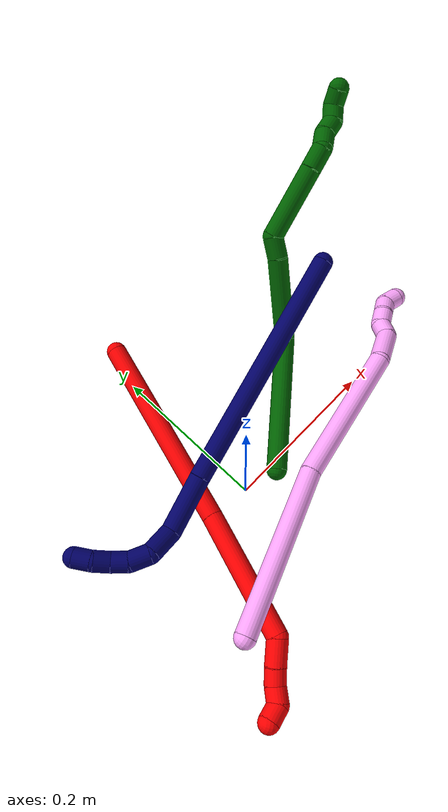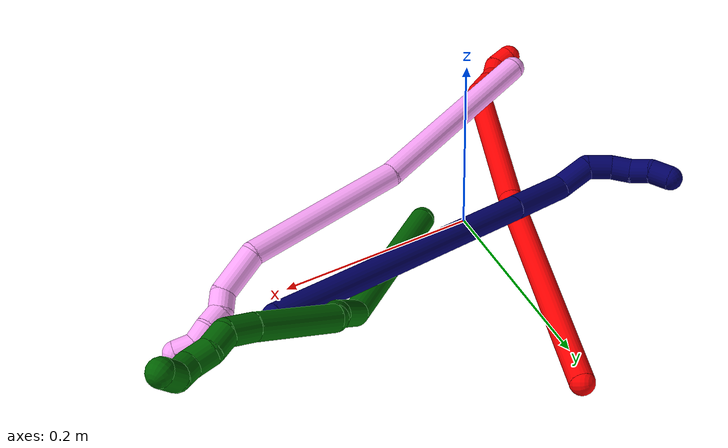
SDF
<sdf version="1.7">
 <world name="default">
  <model name="photoneo_s_sensor">
   <static>1</static>
   <pose>0 0 2 1.57079 1.57079 3.14159</pose>
   <link name="link">
    <inertial><mass>0.1</mass></inertial>
    <sensor name="sensor" type="depth">
     <update_rate>30</update_rate>
     <camera>
      <horizontal_fov>1.22</horizontal_fov>
      <image><width>1920</width><height>1200</height><format>B8G8R8</format></image>
      <clip><near>0.1</near><far>4</far></clip>
      <depth_camera><output>points</output></depth_camera>
     </camera>
     <plugin name="camera_plugin" filename="libgazebo_ros_depth_camera.so">
      <baseline>0.2</baseline>
      <alwaysOn>1</alwaysOn>
      <updateRate>0.0</updateRate>
      <cameraName>camera_ir</cameraName>
      <imageTopicName>/camera/color/image_raw</imageTopicName>
      <cameraInfoTopicName>/camera/color/camera_info</cameraInfoTopicName>
      <depthImageTopicName>/camera/depth/image_raw</depthImageTopicName>
      <depthImageCameraInfoTopicName>/camera/depth/camera_info</depthImageCameraInfoTopicName>
      <pointCloudTopicName>/camera/depth/points</pointCloudTopicName>
      <frameName>fr_optical</frameName>
      <pointCloudCutoff>0.1</pointCloudCutoff>
      <pointCloudCutoffMax>2.0</pointCloudCutoffMax>
      <distortionK1>0</distortionK1>
      <distortionK2>0</distortionK2>
      <distortionK3>0</distortionK3>
      <distortionT1>0</distortionT1>
      <distortionT2>0</distortionT2>
      <CxPrime>0</CxPrime>
      <Cx>0</Cx>
      <Cy>0</Cy>
      <focalLength>0</focalLength>
      <hackBaseline>0</hackBaseline>
     </plugin>
    </sensor>
   </link>
  </model>
  <model name="bin">
   <static>1</static>
   <link name="bottom">
    <collision name="collision-bottom">
     <pose>0 0 -0.01 0 -0 0</pose>
     <geometry><box><size>0.8 0.6 0.02</size></box></geometry>
     <surface>
      <friction><ode><mu>100</mu><mu2>100</mu2></ode></friction>
      <contact><collide_bitmask>65535</collide_bitmask></contact>
     </surface>
    </collision>
   </link>
   <link name="west_wall">
    <collision name="collision-west_wall">
     <pose>-0.41 0 0.1 0 -0 0</pose>
     <geometry><box><size>0.02 0.6 0.2</size></box></geometry>
     <surface>
      <friction><ode><mu>100</mu><mu2>100</mu2></ode></friction>
      <contact><collide_bitmask>65535</collide_bitmask></contact>
     </surface>
    </collision>
   </link>
   <link name="east_wall">
    <collision name="collision-east_wall">
     <pose>0.41 0 0.1 0 -0 0</pose>
     <geometry><box><size>0.02 0.6 0.2</size></box></geometry>
     <surface>
      <friction><ode><mu>100</mu><mu2>100</mu2></ode></friction>
      <contact><collide_bitmask>65535</collide_bitmask></contact>
     </surface>
    </collision>
   </link>
   <link name="south_wall">
    <collision name="collision-south_wall">
     <pose>0 -0.31 0.1 0 -0 0</pose>
     <geometry><box><size>0.8 0.02 0.2</size></box></geometry>
     <surface>
      <friction><ode><mu>100</mu><mu2>100</mu2></ode></friction>
      <contact><collide_bitmask>65535</collide_bitmask></contact>
     </surface>
    </collision>
   </link>
   <link name="north_wall">
    <collision name="collision-north_wall">
     <pose>0 0.31 0.1 0 -0 0</pose>
     <geometry><box><size>0.8 0.02 0.2</size></box></geometry>
     <surface>
      <friction><ode><mu>100</mu><mu2>100</mu2></ode></friction>
      <contact><collide_bitmask>65535</collide_bitmask></contact>
     </surface>
    </collision>
   </link>
  </model>
  <model name="2">
   <static>0</static>
   <link name="2">
    <collision name="collision-cylinder-e_1_1_4">
     <pose>0.020908 -0.103997 0.069126 0.984159 0.165895 0.089076</pose>
     <geometry><cylinder><radius>0.0125</radius><length>0.253227</length></cylinder></geometry>
     <surface>
      <friction><ode><mu>1.16</mu><mu2>1.16</mu2><slip1>0</slip1><slip2>0</slip2></ode></friction>
      <contact><ode><kp>1e+06</kp><kd>1</kd><max_vel>0</max_vel><min_depth>0.001</min_depth></ode></contact>
     </surface>
    </collision>
    <visual name="visual-cylinder-e_1_1_4">
     <pose>0.020908 -0.103997 0.069126 0.984159 0.165895 0.089076</pose>
     <geometry><cylinder><radius>0.0125</radius><length>0.253227</length></cylinder></geometry>
     <material><ambient>1 0 0 1</ambient></material>
    </visual>
    <collision name="collision-cylinder-e_2_4_5">
     <pose>0.050174 -0.275927 0.175564 1.06855 0.10742 0.063597</pose>
     <geometry><cylinder><radius>0.0125</radius><length>0.155909</length></cylinder></geometry>
     <surface>
      <friction><ode><mu>1.16</mu><mu2>1.16</mu2><slip1>0</slip1><slip2>0</slip2></ode></friction>
      <contact><ode><kp>1e+06</kp><kd>1</kd><max_vel>0</max_vel><min_depth>0.001</min_depth></ode></contact>
     </surface>
    </collision>
    <visual name="visual-cylinder-e_2_4_5">
     <pose>0.050174 -0.275927 0.175564 1.06855 0.10742 0.063597</pose>
     <geometry><cylinder><radius>0.0125</radius><length>0.155909</length></cylinder></geometry>
     <material><ambient>1 0 0 1</ambient></material>
    </visual>
    <collision name="collision-cylinder-e_3_5_6">
     <pose>0.068457 -0.355461 0.214697 1.41496 0.70172 0.60666</pose>
     <geometry><cylinder><radius>0.0125</radius><length>0.030749</length></cylinder></geometry>
     <surface>
      <friction><ode><mu>1.16</mu><mu2>1.16</mu2><slip1>0</slip1><slip2>0</slip2></ode></friction>
      <contact><ode><kp>1e+06</kp><kd>1</kd><max_vel>0</max_vel><min_depth>0.001</min_depth></ode></contact>
     </surface>
    </collision>
    <visual name="visual-cylinder-e_3_5_6">
     <pose>0.068457 -0.355461 0.214697 1.41496 0.70172 0.60666</pose>
     <geometry><cylinder><radius>0.0125</radius><length>0.030749</length></cylinder></geometry>
     <material><ambient>1 0 0 1</ambient></material>
    </visual>
    <collision name="collision-cylinder-e_4_6_7">
     <pose>0.085024 -0.374357 0.218427 1.31513 0.722023 0.567383</pose>
     <geometry><cylinder><radius>0.0125</radius><length>0.020099</length></cylinder></geometry>
     <surface>
      <friction><ode><mu>1.16</mu><mu2>1.16</mu2><slip1>0</slip1><slip2>0</slip2></ode></friction>
      <contact><ode><kp>1e+06</kp><kd>1</kd><max_vel>0</max_vel><min_depth>0.001</min_depth></ode></contact>
     </surface>
    </collision>
    <visual name="visual-cylinder-e_4_6_7">
     <pose>0.085024 -0.374357 0.218427 1.31513 0.722023 0.567383</pose>
     <geometry><cylinder><radius>0.0125</radius><length>0.020099</length></cylinder></geometry>
     <material><ambient>1 0 0 1</ambient></material>
    </visual>
    <collision name="collision-cylinder-e_5_7_8">
     <pose>0.095383 -0.390676 0.222545 1.33046 0.380646 0.300011</pose>
     <geometry><cylinder><radius>0.0125</radius><length>0.020011</length></cylinder></geometry>
     <surface>
      <friction><ode><mu>1.16</mu><mu2>1.16</mu2><slip1>0</slip1><slip2>0</slip2></ode></friction>
      <contact><ode><kp>1e+06</kp><kd>1</kd><max_vel>0</max_vel><min_depth>0.001</min_depth></ode></contact>
     </surface>
    </collision>
    <visual name="visual-cylinder-e_5_7_8">
     <pose>0.095383 -0.390676 0.222545 1.33046 0.380646 0.300011</pose>
     <geometry><cylinder><radius>0.0125</radius><length>0.020011</length></cylinder></geometry>
     <material><ambient>1 0 0 1</ambient></material>
    </visual>
    <collision name="collision-cylinder-e_6_8_2">
     <pose>0.103019 -0.407632 0.220093 2.10217 0.402586 0.685141</pose>
     <geometry><cylinder><radius>0.0125</radius><length>0.020005</length></cylinder></geometry>
     <surface>
      <friction><ode><mu>1.16</mu><mu2>1.16</mu2><slip1>0</slip1><slip2>0</slip2></ode></friction>
      <contact><ode><kp>1e+06</kp><kd>1</kd><max_vel>0</max_vel><min_depth>0.001</min_depth></ode></contact>
     </surface>
    </collision>
    <visual name="visual-cylinder-e_6_8_2">
     <pose>0.103019 -0.407632 0.220093 2.10217 0.402586 0.685141</pose>
     <geometry><cylinder><radius>0.0125</radius><length>0.020005</length></cylinder></geometry>
     <material><ambient>1 0 0 1</ambient></material>
    </visual>
    <collision name="collision-sphere-2">
     <pose>0.106938 -0.415566 0.21543 0 -0 0</pose>
     <geometry><sphere><radius>0.0125</radius></sphere></geometry>
     <surface>
      <friction><ode><mu>1.16</mu><mu2>1.16</mu2><slip1>0</slip1><slip2>0</slip2></ode></friction>
      <contact><ode><kp>1e+06</kp><kd>1</kd><max_vel>0</max_vel><min_depth>0.001</min_depth></ode></contact>
     </surface>
    </collision>
    <visual name="visual-sphere-2">
     <pose>0.106938 -0.415566 0.21543 0 -0 0</pose>
     <geometry><sphere><radius>0.0125</radius></sphere></geometry>
     <material><ambient>1 0 0 1</ambient></material>
    </visual>
    <collision name="collision-sphere-4">
     <pose>0.041817 -0.207994 0.138253 0 -0 0</pose>
     <geometry><sphere><radius>0.0125</radius></sphere></geometry>
     <surface>
      <friction><ode><mu>1.16</mu><mu2>1.16</mu2><slip1>0</slip1><slip2>0</slip2></ode></friction>
      <contact><ode><kp>1e+06</kp><kd>1</kd><max_vel>0</max_vel><min_depth>0.001</min_depth></ode></contact>
     </surface>
    </collision>
    <visual name="visual-sphere-4">
     <pose>0.041817 -0.207994 0.138253 0 -0 0</pose>
     <geometry><sphere><radius>0.0125</radius></sphere></geometry>
     <material><ambient>1 0 0 1</ambient></material>
    </visual>
    <collision name="collision-sphere-1">
     <geometry><sphere><radius>0.0125</radius></sphere></geometry>
     <surface>
      <friction><ode><mu>1.16</mu><mu2>1.16</mu2><slip1>0</slip1><slip2>0</slip2></ode></friction>
      <contact><ode><kp>1e+06</kp><kd>1</kd><max_vel>0</max_vel><min_depth>0.001</min_depth></ode></contact>
     </surface>
    </collision>
    <visual name="visual-sphere-1">
     <geometry><sphere><radius>0.0125</radius></sphere></geometry>
     <material><ambient>1 0 0 1</ambient></material>
    </visual>
    <collision name="collision-sphere-8">
     <pose>0.0991 -0.399698 0.224756 0 -0 0</pose>
     <geometry><sphere><radius>0.0125</radius></sphere></geometry>
     <surface>
      <friction><ode><mu>1.16</mu><mu2>1.16</mu2><slip1>0</slip1><slip2>0</slip2></ode></friction>
      <contact><ode><kp>1e+06</kp><kd>1</kd><max_vel>0</max_vel><min_depth>0.001</min_depth></ode></contact>
     </surface>
    </collision>
    <visual name="visual-sphere-8">
     <pose>0.0991 -0.399698 0.224756 0 -0 0</pose>
     <geometry><sphere><radius>0.0125</radius></sphere></geometry>
     <material><ambient>1 0 0 1</ambient></material>
    </visual>
    <collision name="collision-sphere-5">
     <pose>0.058532 -0.343861 0.212874 0 -0 0</pose>
     <geometry><sphere><radius>0.0125</radius></sphere></geometry>
     <surface>
      <friction><ode><mu>1.16</mu><mu2>1.16</mu2><slip1>0</slip1><slip2>0</slip2></ode></friction>
      <contact><ode><kp>1e+06</kp><kd>1</kd><max_vel>0</max_vel><min_depth>0.001</min_depth></ode></contact>
     </surface>
    </collision>
    <visual name="visual-sphere-5">
     <pose>0.058532 -0.343861 0.212874 0 -0 0</pose>
     <geometry><sphere><radius>0.0125</radius></sphere></geometry>
     <material><ambient>1 0 0 1</ambient></material>
    </visual>
    <collision name="collision-sphere-6">
     <pose>0.078382 -0.36706 0.216519 0 -0 0</pose>
     <geometry><sphere><radius>0.0125</radius></sphere></geometry>
     <surface>
      <friction><ode><mu>1.16</mu><mu2>1.16</mu2><slip1>0</slip1><slip2>0</slip2></ode></friction>
      <contact><ode><kp>1e+06</kp><kd>1</kd><max_vel>0</max_vel><min_depth>0.001</min_depth></ode></contact>
     </surface>
    </collision>
    <visual name="visual-sphere-6">
     <pose>0.078382 -0.36706 0.216519 0 -0 0</pose>
     <geometry><sphere><radius>0.0125</radius></sphere></geometry>
     <material><ambient>1 0 0 1</ambient></material>
    </visual>
    <collision name="collision-sphere-7">
     <pose>0.091665 -0.381654 0.220334 0 -0 0</pose>
     <geometry><sphere><radius>0.0125</radius></sphere></geometry>
     <surface>
      <friction><ode><mu>1.16</mu><mu2>1.16</mu2><slip1>0</slip1><slip2>0</slip2></ode></friction>
      <contact><ode><kp>1e+06</kp><kd>1</kd><max_vel>0</max_vel><min_depth>0.001</min_depth></ode></contact>
     </surface>
    </collision>
    <visual name="visual-sphere-7">
     <pose>0.091665 -0.381654 0.220334 0 -0 0</pose>
     <geometry><sphere><radius>0.0125</radius></sphere></geometry>
     <material><ambient>1 0 0 1</ambient></material>
    </visual>
    <inertial>
     <pose>0.041801 -0.207562 0.12945 0 -0 0</pose>
     <mass>0.5</mass>
     <inertia>
      <ixx>0.001816</ixx>
      <ixy>0</ixy>
      <ixz>0</ixz>
      <iyy>0.001038</iyy>
      <iyz>0</iyz>
      <izz>0.001159</izz>
     </inertia>
    </inertial>
   </link>
   <pose>0.016565 0.24785 0.011499 -2.31904 0.949218 -3.1309</pose>
  </model>
  <model name="4">
   <static>0</static>
   <link name="4">
    <collision name="collision-cylinder-e_1_1_4">
     <pose>0.092776 -0.037333 -0.005337 1.71278 1.1847 1.31987</pose>
     <geometry><cylinder><radius>0.0125</radius><length>0.200296</length></cylinder></geometry>
     <surface>
      <friction><ode><mu>1.16</mu><mu2>1.16</mu2><slip1>0</slip1><slip2>0</slip2></ode></friction>
      <contact><ode><kp>1e+06</kp><kd>1</kd><max_vel>0</max_vel><min_depth>0.001</min_depth></ode></contact>
     </surface>
    </collision>
    <visual name="visual-cylinder-e_1_1_4">
     <pose>0.092776 -0.037333 -0.005337 1.71278 1.1847 1.31987</pose>
     <geometry><cylinder><radius>0.0125</radius><length>0.200296</length></cylinder></geometry>
     <material><ambient>1 0.65098 0.996078 1</ambient></material>
    </visual>
    <collision name="collision-cylinder-e_2_4_5">
     <pose>0.267804 -0.097144 -0.003293 1.25355 1.29072 0.99838</pose>
     <geometry><cylinder><radius>0.0125</radius><length>0.171173</length></cylinder></geometry>
     <surface>
      <friction><ode><mu>1.16</mu><mu2>1.16</mu2><slip1>0</slip1><slip2>0</slip2></ode></friction>
      <contact><ode><kp>1e+06</kp><kd>1</kd><max_vel>0</max_vel><min_depth>0.001</min_depth></ode></contact>
     </surface>
    </collision>
    <visual name="visual-cylinder-e_2_4_5">
     <pose>0.267804 -0.097144 -0.003293 1.25355 1.29072 0.99838</pose>
     <geometry><cylinder><radius>0.0125</radius><length>0.171173</length></cylinder></geometry>
     <material><ambient>1 0.65098 0.996078 1</ambient></material>
    </visual>
    <collision name="collision-cylinder-e_3_5_6">
     <pose>0.368549 -0.134696 0.00406 1.57262 0.886904 0.888315</pose>
     <geometry><cylinder><radius>0.0125</radius><length>0.047717</length></cylinder></geometry>
     <surface>
      <friction><ode><mu>1.16</mu><mu2>1.16</mu2><slip1>0</slip1><slip2>0</slip2></ode></friction>
      <contact><ode><kp>1e+06</kp><kd>1</kd><max_vel>0</max_vel><min_depth>0.001</min_depth></ode></contact>
     </surface>
    </collision>
    <visual name="visual-cylinder-e_3_5_6">
     <pose>0.368549 -0.134696 0.00406 1.57262 0.886904 0.888315</pose>
     <geometry><cylinder><radius>0.0125</radius><length>0.047717</length></cylinder></geometry>
     <material><ambient>1 0.65098 0.996078 1</ambient></material>
    </visual>
    <collision name="collision-cylinder-e_4_6_7">
     <pose>0.392763 -0.156271 -0.001499 2.27587 0.590485 1.16419</pose>
     <geometry><cylinder><radius>0.0125</radius><length>0.020551</length></cylinder></geometry>
     <surface>
      <friction><ode><mu>1.16</mu><mu2>1.16</mu2><slip1>0</slip1><slip2>0</slip2></ode></friction>
      <contact><ode><kp>1e+06</kp><kd>1</kd><max_vel>0</max_vel><min_depth>0.001</min_depth></ode></contact>
     </surface>
    </collision>
    <visual name="visual-cylinder-e_4_6_7">
     <pose>0.392763 -0.156271 -0.001499 2.27587 0.590485 1.16419</pose>
     <geometry><cylinder><radius>0.0125</radius><length>0.020551</length></cylinder></geometry>
     <material><ambient>1 0.65098 0.996078 1</ambient></material>
    </visual>
    <collision name="collision-cylinder-e_5_7_8">
     <pose>0.407282 -0.167391 -0.008573 1.89293 1.06529 1.37146</pose>
     <geometry><cylinder><radius>0.0125</radius><length>0.020112</length></cylinder></geometry>
     <surface>
      <friction><ode><mu>1.16</mu><mu2>1.16</mu2><slip1>0</slip1><slip2>0</slip2></ode></friction>
      <contact><ode><kp>1e+06</kp><kd>1</kd><max_vel>0</max_vel><min_depth>0.001</min_depth></ode></contact>
     </surface>
    </collision>
    <visual name="visual-cylinder-e_5_7_8">
     <pose>0.407282 -0.167391 -0.008573 1.89293 1.06529 1.37146</pose>
     <geometry><cylinder><radius>0.0125</radius><length>0.020112</length></cylinder></geometry>
     <material><ambient>1 0.65098 0.996078 1</ambient></material>
    </visual>
    <collision name="collision-cylinder-e_6_8_9">
     <pose>0.42382 -0.178408 -0.0108 1.67758 0.877185 0.962225</pose>
     <geometry><cylinder><radius>0.0125</radius><length>0.020129</length></cylinder></geometry>
     <surface>
      <friction><ode><mu>1.16</mu><mu2>1.16</mu2><slip1>0</slip1><slip2>0</slip2></ode></friction>
      <contact><ode><kp>1e+06</kp><kd>1</kd><max_vel>0</max_vel><min_depth>0.001</min_depth></ode></contact>
     </surface>
    </collision>
    <visual name="visual-cylinder-e_6_8_9">
     <pose>0.42382 -0.178408 -0.0108 1.67758 0.877185 0.962225</pose>
     <geometry><cylinder><radius>0.0125</radius><length>0.020129</length></cylinder></geometry>
     <material><ambient>1 0.65098 0.996078 1</ambient></material>
    </visual>
    <collision name="collision-cylinder-e_7_9_2">
     <pose>0.439832 -0.187844 -0.00674 0.569423 0.972786 0.307063</pose>
     <geometry><cylinder><radius>0.0125</radius><length>0.020021</length></cylinder></geometry>
     <surface>
      <friction><ode><mu>1.16</mu><mu2>1.16</mu2><slip1>0</slip1><slip2>0</slip2></ode></friction>
      <contact><ode><kp>1e+06</kp><kd>1</kd><max_vel>0</max_vel><min_depth>0.001</min_depth></ode></contact>
     </surface>
    </collision>
    <visual name="visual-cylinder-e_7_9_2">
     <pose>0.439832 -0.187844 -0.00674 0.569423 0.972786 0.307063</pose>
     <geometry><cylinder><radius>0.0125</radius><length>0.020021</length></cylinder></geometry>
     <material><ambient>1 0.65098 0.996078 1</ambient></material>
    </visual>
    <collision name="collision-sphere-2">
     <pose>0.448105 -0.190883 -0.001993 0 -0 0</pose>
     <geometry><sphere><radius>0.0125</radius></sphere></geometry>
     <surface>
      <friction><ode><mu>1.16</mu><mu2>1.16</mu2><slip1>0</slip1><slip2>0</slip2></ode></friction>
      <contact><ode><kp>1e+06</kp><kd>1</kd><max_vel>0</max_vel><min_depth>0.001</min_depth></ode></contact>
     </surface>
    </collision>
    <visual name="visual-sphere-2">
     <pose>0.448105 -0.190883 -0.001993 0 -0 0</pose>
     <geometry><sphere><radius>0.0125</radius></sphere></geometry>
     <material><ambient>1 0.65098 0.996078 1</ambient></material>
    </visual>
    <collision name="collision-sphere-9">
     <pose>0.431559 -0.184805 -0.011486 0 -0 0</pose>
     <geometry><sphere><radius>0.0125</radius></sphere></geometry>
     <surface>
      <friction><ode><mu>1.16</mu><mu2>1.16</mu2><slip1>0</slip1><slip2>0</slip2></ode></friction>
      <contact><ode><kp>1e+06</kp><kd>1</kd><max_vel>0</max_vel><min_depth>0.001</min_depth></ode></contact>
     </surface>
    </collision>
    <visual name="visual-sphere-9">
     <pose>0.431559 -0.184805 -0.011486 0 -0 0</pose>
     <geometry><sphere><radius>0.0125</radius></sphere></geometry>
     <material><ambient>1 0.65098 0.996078 1</ambient></material>
    </visual>
    <collision name="collision-sphere-4">
     <pose>0.185552 -0.074667 -0.010673 0 -0 0</pose>
     <geometry><sphere><radius>0.0125</radius></sphere></geometry>
     <surface>
      <friction><ode><mu>1.16</mu><mu2>1.16</mu2><slip1>0</slip1><slip2>0</slip2></ode></friction>
      <contact><ode><kp>1e+06</kp><kd>1</kd><max_vel>0</max_vel><min_depth>0.001</min_depth></ode></contact>
     </surface>
    </collision>
    <visual name="visual-sphere-4">
     <pose>0.185552 -0.074667 -0.010673 0 -0 0</pose>
     <geometry><sphere><radius>0.0125</radius></sphere></geometry>
     <material><ambient>1 0.65098 0.996078 1</ambient></material>
    </visual>
    <collision name="collision-sphere-1">
     <geometry><sphere><radius>0.0125</radius></sphere></geometry>
     <surface>
      <friction><ode><mu>1.16</mu><mu2>1.16</mu2><slip1>0</slip1><slip2>0</slip2></ode></friction>
      <contact><ode><kp>1e+06</kp><kd>1</kd><max_vel>0</max_vel><min_depth>0.001</min_depth></ode></contact>
     </surface>
    </collision>
    <visual name="visual-sphere-1">
     <geometry><sphere><radius>0.0125</radius></sphere></geometry>
     <material><ambient>1 0.65098 0.996078 1</ambient></material>
    </visual>
    <collision name="collision-sphere-8">
     <pose>0.416081 -0.17201 -0.010115 0 -0 0</pose>
     <geometry><sphere><radius>0.0125</radius></sphere></geometry>
     <surface>
      <friction><ode><mu>1.16</mu><mu2>1.16</mu2><slip1>0</slip1><slip2>0</slip2></ode></friction>
      <contact><ode><kp>1e+06</kp><kd>1</kd><max_vel>0</max_vel><min_depth>0.001</min_depth></ode></contact>
     </surface>
    </collision>
    <visual name="visual-sphere-8">
     <pose>0.416081 -0.17201 -0.010115 0 -0 0</pose>
     <geometry><sphere><radius>0.0125</radius></sphere></geometry>
     <material><ambient>1 0.65098 0.996078 1</ambient></material>
    </visual>
    <collision name="collision-sphere-5">
     <pose>0.350055 -0.119622 0.004087 0 -0 0</pose>
     <geometry><sphere><radius>0.0125</radius></sphere></geometry>
     <surface>
      <friction><ode><mu>1.16</mu><mu2>1.16</mu2><slip1>0</slip1><slip2>0</slip2></ode></friction>
      <contact><ode><kp>1e+06</kp><kd>1</kd><max_vel>0</max_vel><min_depth>0.001</min_depth></ode></contact>
     </surface>
    </collision>
    <visual name="visual-sphere-5">
     <pose>0.350055 -0.119622 0.004087 0 -0 0</pose>
     <geometry><sphere><radius>0.0125</radius></sphere></geometry>
     <material><ambient>1 0.65098 0.996078 1</ambient></material>
    </visual>
    <collision name="collision-sphere-6">
     <pose>0.387042 -0.149771 0.004032 0 -0 0</pose>
     <geometry><sphere><radius>0.0125</radius></sphere></geometry>
     <surface>
      <friction><ode><mu>1.16</mu><mu2>1.16</mu2><slip1>0</slip1><slip2>0</slip2></ode></friction>
      <contact><ode><kp>1e+06</kp><kd>1</kd><max_vel>0</max_vel><min_depth>0.001</min_depth></ode></contact>
     </surface>
    </collision>
    <visual name="visual-sphere-6">
     <pose>0.387042 -0.149771 0.004032 0 -0 0</pose>
     <geometry><sphere><radius>0.0125</radius></sphere></geometry>
     <material><ambient>1 0.65098 0.996078 1</ambient></material>
    </visual>
    <collision name="collision-sphere-7">
     <pose>0.398484 -0.162771 -0.007031 0 -0 0</pose>
     <geometry><sphere><radius>0.0125</radius></sphere></geometry>
     <surface>
      <friction><ode><mu>1.16</mu><mu2>1.16</mu2><slip1>0</slip1><slip2>0</slip2></ode></friction>
      <contact><ode><kp>1e+06</kp><kd>1</kd><max_vel>0</max_vel><min_depth>0.001</min_depth></ode></contact>
     </surface>
    </collision>
    <visual name="visual-sphere-7">
     <pose>0.398484 -0.162771 -0.007031 0 -0 0</pose>
     <geometry><sphere><radius>0.0125</radius></sphere></geometry>
     <material><ambient>1 0.65098 0.996078 1</ambient></material>
    </visual>
    <inertial>
     <pose>0.231219 -0.088927 -0.003989 0 -0 0</pose>
     <mass>0.5</mass>
     <inertia>
      <ixx>0.000522</ixx>
      <ixy>0</ixy>
      <ixz>0</ixz>
      <iyy>0.001325</iyy>
      <iyz>0</iyz>
      <izz>-0.000675</izz>
     </inertia>
    </inertial>
   </link>
   <pose>-0.127978 -0.120369 0.066941 1.89881 -0.269205 0.19682</pose>
  </model>
  <model name="6">
   <static>0</static>
   <link name="6">
    <collision name="collision-cylinder-e_1_1_4">
     <pose>0.008783 0.008429 0.083257 -0.100897 0.10457 -0.005285</pose>
     <geometry><cylinder><radius>0.0125</radius><length>0.168284</length></cylinder></geometry>
     <surface>
      <friction><ode><mu>1.16</mu><mu2>1.16</mu2><slip1>0</slip1><slip2>0</slip2></ode></friction>
      <contact><ode><kp>1e+06</kp><kd>1</kd><max_vel>0</max_vel><min_depth>0.001</min_depth></ode></contact>
     </surface>
    </collision>
    <visual name="visual-cylinder-e_1_1_4">
     <pose>0.008783 0.008429 0.083257 -0.100897 0.10457 -0.005285</pose>
     <geometry><cylinder><radius>0.0125</radius><length>0.168284</length></cylinder></geometry>
     <material><ambient>0 0.392157 0.003922 1</ambient></material>
    </visual>
    <collision name="collision-cylinder-e_2_4_5">
     <pose>0.036041 0.050023 0.2021 -0.750192 0.36298 -0.144258</pose>
     <geometry><cylinder><radius>0.0125</radius><length>0.104071</length></cylinder></geometry>
     <surface>
      <friction><ode><mu>1.16</mu><mu2>1.16</mu2><slip1>0</slip1><slip2>0</slip2></ode></friction>
      <contact><ode><kp>1e+06</kp><kd>1</kd><max_vel>0</max_vel><min_depth>0.001</min_depth></ode></contact>
     </surface>
    </collision>
    <visual name="visual-cylinder-e_2_4_5">
     <pose>0.036041 0.050023 0.2021 -0.750192 0.36298 -0.144258</pose>
     <geometry><cylinder><radius>0.0125</radius><length>0.104071</length></cylinder></geometry>
     <material><ambient>0 0.392157 0.003922 1</ambient></material>
    </visual>
    <collision name="collision-cylinder-e_3_5_6">
     <pose>0.060708 0.090137 0.247189 -0.631437 0.484174 -0.160968</pose>
     <geometry><cylinder><radius>0.0125</radius><length>0.026601</length></cylinder></geometry>
     <surface>
      <friction><ode><mu>1.16</mu><mu2>1.16</mu2><slip1>0</slip1><slip2>0</slip2></ode></friction>
      <contact><ode><kp>1e+06</kp><kd>1</kd><max_vel>0</max_vel><min_depth>0.001</min_depth></ode></contact>
     </surface>
    </collision>
    <visual name="visual-cylinder-e_3_5_6">
     <pose>0.060708 0.090137 0.247189 -0.631437 0.484174 -0.160968</pose>
     <geometry><cylinder><radius>0.0125</radius><length>0.026601</length></cylinder></geometry>
     <material><ambient>0 0.392157 0.003922 1</ambient></material>
    </visual>
    <collision name="collision-cylinder-e_4_6_7">
     <pose>0.054901 0.12019 0.293031 -0.566302 -0.271726 0.079512</pose>
     <geometry><cylinder><radius>0.0125</radius><length>0.089406</length></cylinder></geometry>
     <surface>
      <friction><ode><mu>1.16</mu><mu2>1.16</mu2><slip1>0</slip1><slip2>0</slip2></ode></friction>
      <contact><ode><kp>1e+06</kp><kd>1</kd><max_vel>0</max_vel><min_depth>0.001</min_depth></ode></contact>
     </surface>
    </collision>
    <visual name="visual-cylinder-e_4_6_7">
     <pose>0.054901 0.12019 0.293031 -0.566302 -0.271726 0.079512</pose>
     <geometry><cylinder><radius>0.0125</radius><length>0.089406</length></cylinder></geometry>
     <material><ambient>0 0.392157 0.003922 1</ambient></material>
    </visual>
    <collision name="collision-cylinder-e_5_7_8">
     <pose>0.039016 0.149743 0.341424 -0.491316 -0.277052 0.069882</pose>
     <geometry><cylinder><radius>0.0125</radius><length>0.028422</length></cylinder></geometry>
     <surface>
      <friction><ode><mu>1.16</mu><mu2>1.16</mu2><slip1>0</slip1><slip2>0</slip2></ode></friction>
      <contact><ode><kp>1e+06</kp><kd>1</kd><max_vel>0</max_vel><min_depth>0.001</min_depth></ode></contact>
     </surface>
    </collision>
    <visual name="visual-cylinder-e_5_7_8">
     <pose>0.039016 0.149743 0.341424 -0.491316 -0.277052 0.069882</pose>
     <geometry><cylinder><radius>0.0125</radius><length>0.028422</length></cylinder></geometry>
     <material><ambient>0 0.392157 0.003922 1</ambient></material>
    </visual>
    <collision name="collision-cylinder-e_6_8_9">
     <pose>0.03501 0.156022 0.364368 0.015538 -0.010937 -8.5e-05</pose>
     <geometry><cylinder><radius>0.0125</radius><length>0.021788</length></cylinder></geometry>
     <surface>
      <friction><ode><mu>1.16</mu><mu2>1.16</mu2><slip1>0</slip1><slip2>0</slip2></ode></friction>
      <contact><ode><kp>1e+06</kp><kd>1</kd><max_vel>0</max_vel><min_depth>0.001</min_depth></ode></contact>
     </surface>
    </collision>
    <visual name="visual-cylinder-e_6_8_9">
     <pose>0.03501 0.156022 0.364368 0.015538 -0.010937 -8.5e-05</pose>
     <geometry><cylinder><radius>0.0125</radius><length>0.021788</length></cylinder></geometry>
     <material><ambient>0 0.392157 0.003922 1</ambient></material>
    </visual>
    <collision name="collision-cylinder-e_7_9_10">
     <pose>0.031131 0.156087 0.385103 -0.023759 -0.364735 0.004382</pose>
     <geometry><cylinder><radius>0.0125</radius><length>0.021078</length></cylinder></geometry>
     <surface>
      <friction><ode><mu>1.16</mu><mu2>1.16</mu2><slip1>0</slip1><slip2>0</slip2></ode></friction>
      <contact><ode><kp>1e+06</kp><kd>1</kd><max_vel>0</max_vel><min_depth>0.001</min_depth></ode></contact>
     </surface>
    </collision>
    <visual name="visual-cylinder-e_7_9_10">
     <pose>0.031131 0.156087 0.385103 -0.023759 -0.364735 0.004382</pose>
     <geometry><cylinder><radius>0.0125</radius><length>0.021078</length></cylinder></geometry>
     <material><ambient>0 0.392157 0.003922 1</ambient></material>
    </visual>
    <collision name="collision-cylinder-e_8_10_11">
     <pose>0.028909 0.158966 0.404544 -0.268922 0.153161 -0.020759</pose>
     <geometry><cylinder><radius>0.0125</radius><length>0.020147</length></cylinder></geometry>
     <surface>
      <friction><ode><mu>1.16</mu><mu2>1.16</mu2><slip1>0</slip1><slip2>0</slip2></ode></friction>
      <contact><ode><kp>1e+06</kp><kd>1</kd><max_vel>0</max_vel><min_depth>0.001</min_depth></ode></contact>
     </surface>
    </collision>
    <visual name="visual-cylinder-e_8_10_11">
     <pose>0.028909 0.158966 0.404544 -0.268922 0.153161 -0.020759</pose>
     <geometry><cylinder><radius>0.0125</radius><length>0.020147</length></cylinder></geometry>
     <material><ambient>0 0.392157 0.003922 1</ambient></material>
    </visual>
    <collision name="collision-cylinder-e_9_11_2">
     <pose>0.030325 0.169534 0.420406 -0.901785 -0.011906 0.005764</pose>
     <geometry><cylinder><radius>0.0125</radius><length>0.020202</length></cylinder></geometry>
     <surface>
      <friction><ode><mu>1.16</mu><mu2>1.16</mu2><slip1>0</slip1><slip2>0</slip2></ode></friction>
      <contact><ode><kp>1e+06</kp><kd>1</kd><max_vel>0</max_vel><min_depth>0.001</min_depth></ode></contact>
     </surface>
    </collision>
    <visual name="visual-cylinder-e_9_11_2">
     <pose>0.030325 0.169534 0.420406 -0.901785 -0.011906 0.005764</pose>
     <geometry><cylinder><radius>0.0125</radius><length>0.020202</length></cylinder></geometry>
     <material><ambient>0 0.392157 0.003922 1</ambient></material>
    </visual>
    <collision name="collision-sphere-2">
     <pose>0.030205 0.177457 0.426671 0 -0 0</pose>
     <geometry><sphere><radius>0.0125</radius></sphere></geometry>
     <surface>
      <friction><ode><mu>1.16</mu><mu2>1.16</mu2><slip1>0</slip1><slip2>0</slip2></ode></friction>
      <contact><ode><kp>1e+06</kp><kd>1</kd><max_vel>0</max_vel><min_depth>0.001</min_depth></ode></contact>
     </surface>
    </collision>
    <visual name="visual-sphere-2">
     <pose>0.030205 0.177457 0.426671 0 -0 0</pose>
     <geometry><sphere><radius>0.0125</radius></sphere></geometry>
     <material><ambient>0 0.392157 0.003922 1</ambient></material>
    </visual>
    <collision name="collision-sphere-11">
     <pose>0.030446 0.161611 0.414142 0 -0 0</pose>
     <geometry><sphere><radius>0.0125</radius></sphere></geometry>
     <surface>
      <friction><ode><mu>1.16</mu><mu2>1.16</mu2><slip1>0</slip1><slip2>0</slip2></ode></friction>
      <contact><ode><kp>1e+06</kp><kd>1</kd><max_vel>0</max_vel><min_depth>0.001</min_depth></ode></contact>
     </surface>
    </collision>
    <visual name="visual-sphere-11">
     <pose>0.030446 0.161611 0.414142 0 -0 0</pose>
     <geometry><sphere><radius>0.0125</radius></sphere></geometry>
     <material><ambient>0 0.392157 0.003922 1</ambient></material>
    </visual>
    <collision name="collision-sphere-10">
     <pose>0.027372 0.156321 0.394946 0 -0 0</pose>
     <geometry><sphere><radius>0.0125</radius></sphere></geometry>
     <surface>
      <friction><ode><mu>1.16</mu><mu2>1.16</mu2><slip1>0</slip1><slip2>0</slip2></ode></friction>
      <contact><ode><kp>1e+06</kp><kd>1</kd><max_vel>0</max_vel><min_depth>0.001</min_depth></ode></contact>
     </surface>
    </collision>
    <visual name="visual-sphere-10">
     <pose>0.027372 0.156321 0.394946 0 -0 0</pose>
     <geometry><sphere><radius>0.0125</radius></sphere></geometry>
     <material><ambient>0 0.392157 0.003922 1</ambient></material>
    </visual>
    <collision name="collision-sphere-9">
     <pose>0.03489 0.155853 0.37526 0 -0 0</pose>
     <geometry><sphere><radius>0.0125</radius></sphere></geometry>
     <surface>
      <friction><ode><mu>1.16</mu><mu2>1.16</mu2><slip1>0</slip1><slip2>0</slip2></ode></friction>
      <contact><ode><kp>1e+06</kp><kd>1</kd><max_vel>0</max_vel><min_depth>0.001</min_depth></ode></contact>
     </surface>
    </collision>
    <visual name="visual-sphere-9">
     <pose>0.03489 0.155853 0.37526 0 -0 0</pose>
     <geometry><sphere><radius>0.0125</radius></sphere></geometry>
     <material><ambient>0 0.392157 0.003922 1</ambient></material>
    </visual>
    <collision name="collision-sphere-4">
     <pose>0.017565 0.016858 0.166514 0 -0 0</pose>
     <geometry><sphere><radius>0.0125</radius></sphere></geometry>
     <surface>
      <friction><ode><mu>1.16</mu><mu2>1.16</mu2><slip1>0</slip1><slip2>0</slip2></ode></friction>
      <contact><ode><kp>1e+06</kp><kd>1</kd><max_vel>0</max_vel><min_depth>0.001</min_depth></ode></contact>
     </surface>
    </collision>
    <visual name="visual-sphere-4">
     <pose>0.017565 0.016858 0.166514 0 -0 0</pose>
     <geometry><sphere><radius>0.0125</radius></sphere></geometry>
     <material><ambient>0 0.392157 0.003922 1</ambient></material>
    </visual>
    <collision name="collision-sphere-1">
     <geometry><sphere><radius>0.0125</radius></sphere></geometry>
     <surface>
      <friction><ode><mu>1.16</mu><mu2>1.16</mu2><slip1>0</slip1><slip2>0</slip2></ode></friction>
      <contact><ode><kp>1e+06</kp><kd>1</kd><max_vel>0</max_vel><min_depth>0.001</min_depth></ode></contact>
     </surface>
    </collision>
    <visual name="visual-sphere-1">
     <geometry><sphere><radius>0.0125</radius></sphere></geometry>
     <material><ambient>0 0.392157 0.003922 1</ambient></material>
    </visual>
    <collision name="collision-sphere-8">
     <pose>0.035129 0.156192 0.353476 0 -0 0</pose>
     <geometry><sphere><radius>0.0125</radius></sphere></geometry>
     <surface>
      <friction><ode><mu>1.16</mu><mu2>1.16</mu2><slip1>0</slip1><slip2>0</slip2></ode></friction>
      <contact><ode><kp>1e+06</kp><kd>1</kd><max_vel>0</max_vel><min_depth>0.001</min_depth></ode></contact>
     </surface>
    </collision>
    <visual name="visual-sphere-8">
     <pose>0.035129 0.156192 0.353476 0 -0 0</pose>
     <geometry><sphere><radius>0.0125</radius></sphere></geometry>
     <material><ambient>0 0.392157 0.003922 1</ambient></material>
    </visual>
    <collision name="collision-sphere-5">
     <pose>0.054517 0.083188 0.237687 0 -0 0</pose>
     <geometry><sphere><radius>0.0125</radius></sphere></geometry>
     <surface>
      <friction><ode><mu>1.16</mu><mu2>1.16</mu2><slip1>0</slip1><slip2>0</slip2></ode></friction>
      <contact><ode><kp>1e+06</kp><kd>1</kd><max_vel>0</max_vel><min_depth>0.001</min_depth></ode></contact>
     </surface>
    </collision>
    <visual name="visual-sphere-5">
     <pose>0.054517 0.083188 0.237687 0 -0 0</pose>
     <geometry><sphere><radius>0.0125</radius></sphere></geometry>
     <material><ambient>0 0.392157 0.003922 1</ambient></material>
    </visual>
    <collision name="collision-sphere-6">
     <pose>0.066899 0.097086 0.256691 0 -0 0</pose>
     <geometry><sphere><radius>0.0125</radius></sphere></geometry>
     <surface>
      <friction><ode><mu>1.16</mu><mu2>1.16</mu2><slip1>0</slip1><slip2>0</slip2></ode></friction>
      <contact><ode><kp>1e+06</kp><kd>1</kd><max_vel>0</max_vel><min_depth>0.001</min_depth></ode></contact>
     </surface>
    </collision>
    <visual name="visual-sphere-6">
     <pose>0.066899 0.097086 0.256691 0 -0 0</pose>
     <geometry><sphere><radius>0.0125</radius></sphere></geometry>
     <material><ambient>0 0.392157 0.003922 1</ambient></material>
    </visual>
    <collision name="collision-sphere-7">
     <pose>0.042903 0.143294 0.329371 0 -0 0</pose>
     <geometry><sphere><radius>0.0125</radius></sphere></geometry>
     <surface>
      <friction><ode><mu>1.16</mu><mu2>1.16</mu2><slip1>0</slip1><slip2>0</slip2></ode></friction>
      <contact><ode><kp>1e+06</kp><kd>1</kd><max_vel>0</max_vel><min_depth>0.001</min_depth></ode></contact>
     </surface>
    </collision>
    <visual name="visual-sphere-7">
     <pose>0.042903 0.143294 0.329371 0 -0 0</pose>
     <geometry><sphere><radius>0.0125</radius></sphere></geometry>
     <material><ambient>0 0.392157 0.003922 1</ambient></material>
    </visual>
    <inertial>
     <pose>0.03095 0.074682 0.220443 0 -0 0</pose>
     <mass>0.5</mass>
     <inertia>
      <ixx>0.000556</ixx>
      <ixy>0</ixy>
      <ixz>0</ixz>
      <iyy>0.000544</iyy>
      <iyz>0</iyz>
      <izz>-0.000166</izz>
     </inertia>
    </inertial>
   </link>
   <pose>0.042423 -0.01163 0.012158 1.52798 -0.223287 2.18885</pose>
  </model>
  <model name="7">
   <static>0</static>
   <link name="7">
    <collision name="collision-cylinder-e_1_1_4">
     <pose>-0.00224 0.047881 -0.144511 -2.82165 -0.014711 0.091115</pose>
     <geometry><cylinder><radius>0.0125</radius><length>0.304506</length></cylinder></geometry>
     <surface>
      <friction><ode><mu>1.16</mu><mu2>1.16</mu2><slip1>0</slip1><slip2>0</slip2></ode></friction>
      <contact><ode><kp>1e+06</kp><kd>1</kd><max_vel>0</max_vel><min_depth>0.001</min_depth></ode></contact>
     </surface>
    </collision>
    <visual name="visual-cylinder-e_1_1_4">
     <pose>-0.00224 0.047881 -0.144511 -2.82165 -0.014711 0.091115</pose>
     <geometry><cylinder><radius>0.0125</radius><length>0.304506</length></cylinder></geometry>
     <material><ambient>0.003922 0 0.403922 1</ambient></material>
    </visual>
    <collision name="collision-cylinder-e_2_4_5">
     <pose>-0.004444 0.105633 -0.32283 -2.85751 0.00101 -0.007063</pose>
     <geometry><cylinder><radius>0.0125</radius><length>0.07044</length></cylinder></geometry>
     <surface>
      <friction><ode><mu>1.16</mu><mu2>1.16</mu2><slip1>0</slip1><slip2>0</slip2></ode></friction>
      <contact><ode><kp>1e+06</kp><kd>1</kd><max_vel>0</max_vel><min_depth>0.001</min_depth></ode></contact>
     </surface>
    </collision>
    <visual name="visual-cylinder-e_2_4_5">
     <pose>-0.004444 0.105633 -0.32283 -2.85751 0.00101 -0.007063</pose>
     <geometry><cylinder><radius>0.0125</radius><length>0.07044</length></cylinder></geometry>
     <material><ambient>0.003922 0 0.403922 1</ambient></material>
    </visual>
    <collision name="collision-cylinder-e_3_5_6">
     <pose>-0.011725 0.125221 -0.36987 -2.50818 -0.419257 1.15156</pose>
     <geometry><cylinder><radius>0.0125</radius><length>0.035947</length></cylinder></geometry>
     <surface>
      <friction><ode><mu>1.16</mu><mu2>1.16</mu2><slip1>0</slip1><slip2>0</slip2></ode></friction>
      <contact><ode><kp>1e+06</kp><kd>1</kd><max_vel>0</max_vel><min_depth>0.001</min_depth></ode></contact>
     </surface>
    </collision>
    <visual name="visual-cylinder-e_3_5_6">
     <pose>-0.011725 0.125221 -0.36987 -2.50818 -0.419257 1.15156</pose>
     <geometry><cylinder><radius>0.0125</radius><length>0.035947</length></cylinder></geometry>
     <material><ambient>0.003922 0 0.403922 1</ambient></material>
    </visual>
    <collision name="collision-cylinder-e_4_6_7">
     <pose>-0.017474 0.145652 -0.389921 -2.1376 0.122827 -0.22312</pose>
     <geometry><cylinder><radius>0.0125</radius><length>0.025592</length></cylinder></geometry>
     <surface>
      <friction><ode><mu>1.16</mu><mu2>1.16</mu2><slip1>0</slip1><slip2>0</slip2></ode></friction>
      <contact><ode><kp>1e+06</kp><kd>1</kd><max_vel>0</max_vel><min_depth>0.001</min_depth></ode></contact>
     </surface>
    </collision>
    <visual name="visual-cylinder-e_4_6_7">
     <pose>-0.017474 0.145652 -0.389921 -2.1376 0.122827 -0.22312</pose>
     <geometry><cylinder><radius>0.0125</radius><length>0.025592</length></cylinder></geometry>
     <material><ambient>0.003922 0 0.403922 1</ambient></material>
    </visual>
    <collision name="collision-cylinder-e_5_7_8">
     <pose>-0.013902 0.166552 -0.399039 -1.79277 0.189628 -0.236795</pose>
     <geometry><cylinder><radius>0.0125</radius><length>0.021267</length></cylinder></geometry>
     <surface>
      <friction><ode><mu>1.16</mu><mu2>1.16</mu2><slip1>0</slip1><slip2>0</slip2></ode></friction>
      <contact><ode><kp>1e+06</kp><kd>1</kd><max_vel>0</max_vel><min_depth>0.001</min_depth></ode></contact>
     </surface>
    </collision>
    <visual name="visual-cylinder-e_5_7_8">
     <pose>-0.013902 0.166552 -0.399039 -1.79277 0.189628 -0.236795</pose>
     <geometry><cylinder><radius>0.0125</radius><length>0.021267</length></cylinder></geometry>
     <material><ambient>0.003922 0 0.403922 1</ambient></material>
    </visual>
    <collision name="collision-cylinder-e_6_8_9">
     <pose>-0.012469 0.187089 -0.402401 -1.67315 -0.054882 0.060804</pose>
     <geometry><cylinder><radius>0.0125</radius><length>0.020841</length></cylinder></geometry>
     <surface>
      <friction><ode><mu>1.16</mu><mu2>1.16</mu2><slip1>0</slip1><slip2>0</slip2></ode></friction>
      <contact><ode><kp>1e+06</kp><kd>1</kd><max_vel>0</max_vel><min_depth>0.001</min_depth></ode></contact>
     </surface>
    </collision>
    <visual name="visual-cylinder-e_6_8_9">
     <pose>-0.012469 0.187089 -0.402401 -1.67315 -0.054882 0.060804</pose>
     <geometry><cylinder><radius>0.0125</radius><length>0.020841</length></cylinder></geometry>
     <material><ambient>0.003922 0 0.403922 1</ambient></material>
    </visual>
    <collision name="collision-cylinder-e_7_9_2">
     <pose>-0.010053 0.207714 -0.403735 -1.59714 0.282897 -0.290346</pose>
     <geometry><cylinder><radius>0.0125</radius><length>0.021407</length></cylinder></geometry>
     <surface>
      <friction><ode><mu>1.16</mu><mu2>1.16</mu2><slip1>0</slip1><slip2>0</slip2></ode></friction>
      <contact><ode><kp>1e+06</kp><kd>1</kd><max_vel>0</max_vel><min_depth>0.001</min_depth></ode></contact>
     </surface>
    </collision>
    <visual name="visual-cylinder-e_7_9_2">
     <pose>-0.010053 0.207714 -0.403735 -1.59714 0.282897 -0.290346</pose>
     <geometry><cylinder><radius>0.0125</radius><length>0.021407</length></cylinder></geometry>
     <material><ambient>0.003922 0 0.403922 1</ambient></material>
    </visual>
    <collision name="collision-sphere-2">
     <pose>-0.007065 0.217989 -0.404006 0 -0 0</pose>
     <geometry><sphere><radius>0.0125</radius></sphere></geometry>
     <surface>
      <friction><ode><mu>1.16</mu><mu2>1.16</mu2><slip1>0</slip1><slip2>0</slip2></ode></friction>
      <contact><ode><kp>1e+06</kp><kd>1</kd><max_vel>0</max_vel><min_depth>0.001</min_depth></ode></contact>
     </surface>
    </collision>
    <visual name="visual-sphere-2">
     <pose>-0.007065 0.217989 -0.404006 0 -0 0</pose>
     <geometry><sphere><radius>0.0125</radius></sphere></geometry>
     <material><ambient>0.003922 0 0.403922 1</ambient></material>
    </visual>
    <collision name="collision-sphere-9">
     <pose>-0.013041 0.19744 -0.403464 0 -0 0</pose>
     <geometry><sphere><radius>0.0125</radius></sphere></geometry>
     <surface>
      <friction><ode><mu>1.16</mu><mu2>1.16</mu2><slip1>0</slip1><slip2>0</slip2></ode></friction>
      <contact><ode><kp>1e+06</kp><kd>1</kd><max_vel>0</max_vel><min_depth>0.001</min_depth></ode></contact>
     </surface>
    </collision>
    <visual name="visual-sphere-9">
     <pose>-0.013041 0.19744 -0.403464 0 -0 0</pose>
     <geometry><sphere><radius>0.0125</radius></sphere></geometry>
     <material><ambient>0.003922 0 0.403922 1</ambient></material>
    </visual>
    <collision name="collision-sphere-4">
     <pose>-0.00448 0.095761 -0.289022 0 -0 0</pose>
     <geometry><sphere><radius>0.0125</radius></sphere></geometry>
     <surface>
      <friction><ode><mu>1.16</mu><mu2>1.16</mu2><slip1>0</slip1><slip2>0</slip2></ode></friction>
      <contact><ode><kp>1e+06</kp><kd>1</kd><max_vel>0</max_vel><min_depth>0.001</min_depth></ode></contact>
     </surface>
    </collision>
    <visual name="visual-sphere-4">
     <pose>-0.00448 0.095761 -0.289022 0 -0 0</pose>
     <geometry><sphere><radius>0.0125</radius></sphere></geometry>
     <material><ambient>0.003922 0 0.403922 1</ambient></material>
    </visual>
    <collision name="collision-sphere-1">
     <geometry><sphere><radius>0.0125</radius></sphere></geometry>
     <surface>
      <friction><ode><mu>1.16</mu><mu2>1.16</mu2><slip1>0</slip1><slip2>0</slip2></ode></friction>
      <contact><ode><kp>1e+06</kp><kd>1</kd><max_vel>0</max_vel><min_depth>0.001</min_depth></ode></contact>
     </surface>
    </collision>
    <visual name="visual-sphere-1">
     <geometry><sphere><radius>0.0125</radius></sphere></geometry>
     <material><ambient>0.003922 0 0.403922 1</ambient></material>
    </visual>
    <collision name="collision-sphere-8">
     <pose>-0.011898 0.176739 -0.401338 0 -0 0</pose>
     <geometry><sphere><radius>0.0125</radius></sphere></geometry>
     <surface>
      <friction><ode><mu>1.16</mu><mu2>1.16</mu2><slip1>0</slip1><slip2>0</slip2></ode></friction>
      <contact><ode><kp>1e+06</kp><kd>1</kd><max_vel>0</max_vel><min_depth>0.001</min_depth></ode></contact>
     </surface>
    </collision>
    <visual name="visual-sphere-8">
     <pose>-0.011898 0.176739 -0.401338 0 -0 0</pose>
     <geometry><sphere><radius>0.0125</radius></sphere></geometry>
     <material><ambient>0.003922 0 0.403922 1</ambient></material>
    </visual>
    <collision name="collision-sphere-5">
     <pose>-0.004408 0.115504 -0.356638 0 -0 0</pose>
     <geometry><sphere><radius>0.0125</radius></sphere></geometry>
     <surface>
      <friction><ode><mu>1.16</mu><mu2>1.16</mu2><slip1>0</slip1><slip2>0</slip2></ode></friction>
      <contact><ode><kp>1e+06</kp><kd>1</kd><max_vel>0</max_vel><min_depth>0.001</min_depth></ode></contact>
     </surface>
    </collision>
    <visual name="visual-sphere-5">
     <pose>-0.004408 0.115504 -0.356638 0 -0 0</pose>
     <geometry><sphere><radius>0.0125</radius></sphere></geometry>
     <material><ambient>0.003922 0 0.403922 1</ambient></material>
    </visual>
    <collision name="collision-sphere-6">
     <pose>-0.019042 0.134938 -0.383103 0 -0 0</pose>
     <geometry><sphere><radius>0.0125</radius></sphere></geometry>
     <surface>
      <friction><ode><mu>1.16</mu><mu2>1.16</mu2><slip1>0</slip1><slip2>0</slip2></ode></friction>
      <contact><ode><kp>1e+06</kp><kd>1</kd><max_vel>0</max_vel><min_depth>0.001</min_depth></ode></contact>
     </surface>
    </collision>
    <visual name="visual-sphere-6">
     <pose>-0.019042 0.134938 -0.383103 0 -0 0</pose>
     <geometry><sphere><radius>0.0125</radius></sphere></geometry>
     <material><ambient>0.003922 0 0.403922 1</ambient></material>
    </visual>
    <collision name="collision-sphere-7">
     <pose>-0.015906 0.156365 -0.39674 0 -0 0</pose>
     <geometry><sphere><radius>0.0125</radius></sphere></geometry>
     <surface>
      <friction><ode><mu>1.16</mu><mu2>1.16</mu2><slip1>0</slip1><slip2>0</slip2></ode></friction>
      <contact><ode><kp>1e+06</kp><kd>1</kd><max_vel>0</max_vel><min_depth>0.001</min_depth></ode></contact>
     </surface>
    </collision>
    <visual name="visual-sphere-7">
     <pose>-0.015906 0.156365 -0.39674 0 -0 0</pose>
     <geometry><sphere><radius>0.0125</radius></sphere></geometry>
     <material><ambient>0.003922 0 0.403922 1</ambient></material>
    </visual>
    <inertial>
     <pose>-0.005269 0.084275 -0.23107 0 -0 0</pose>
     <mass>0.5</mass>
     <inertia>
      <ixx>0.002613</ixx>
      <ixy>0</ixy>
      <ixz>0</ixz>
      <iyy>-0.002032</iyy>
      <iyz>0</iyz>
      <izz>-0.000758</izz>
     </inertia>
    </inertial>
   </link>
   <pose>0.256844 0.112602 0.098254 0.693198 1.16291 1.28198</pose>
  </model>
 </world>
</sdf>
